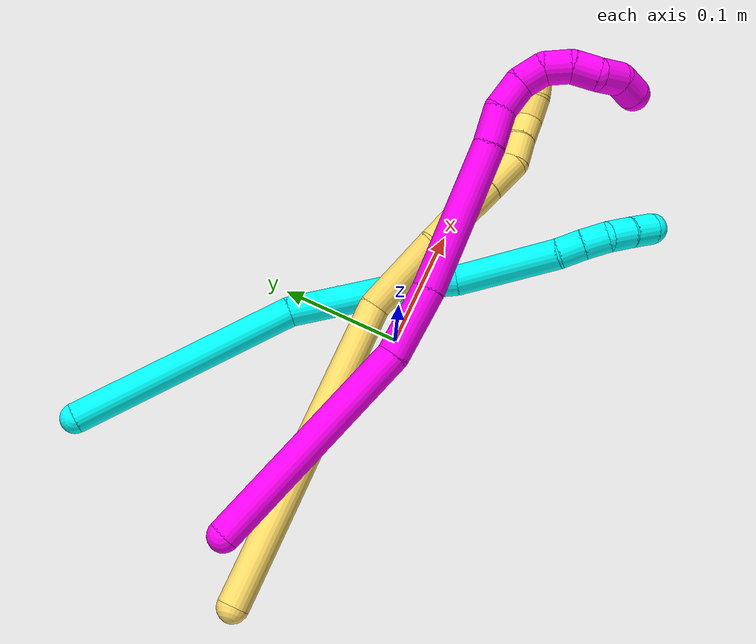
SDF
<sdf version="1.7">
 <world name="default">
  <model name="3">
   <static>0</static>
   <link name="3">
    <collision name="collision-cylinder-e_1_1_4">
     <pose>0.069147 -0.066506 0.002081 1.53951 0.804624 0.782323</pose>
     <geometry><cylinder><radius>0.0125</radius><length>0.191923</length></cylinder></geometry>
     <surface>
      <friction><ode><mu>1.16</mu><mu2>1.16</mu2><slip1>0</slip1><slip2>0</slip2></ode></friction>
      <contact><ode><kp>1e+06</kp><kd>1</kd><max_vel>0</max_vel><min_depth>0.001</min_depth></ode></contact>
     </surface>
    </collision>
    <visual name="visual-cylinder-e_1_1_4">
     <pose>0.069147 -0.066506 0.002081 1.53951 0.804624 0.782323</pose>
     <geometry><cylinder><radius>0.0125</radius><length>0.191923</length></cylinder></geometry>
     <material><ambient>0.003922 1 0.996078 1</ambient></material>
    </visual>
    <collision name="collision-cylinder-e_2_4_5">
     <pose>0.167105 -0.1803 0.016339 1.31878 0.533033 0.417084</pose>
     <geometry><cylinder><radius>0.0125</radius><length>0.113394</length></cylinder></geometry>
     <surface>
      <friction><ode><mu>1.16</mu><mu2>1.16</mu2><slip1>0</slip1><slip2>0</slip2></ode></friction>
      <contact><ode><kp>1e+06</kp><kd>1</kd><max_vel>0</max_vel><min_depth>0.001</min_depth></ode></contact>
     </surface>
    </collision>
    <visual name="visual-cylinder-e_2_4_5">
     <pose>0.167105 -0.1803 0.016339 1.31878 0.533033 0.417084</pose>
     <geometry><cylinder><radius>0.0125</radius><length>0.113394</length></cylinder></geometry>
     <material><ambient>0.003922 1 0.996078 1</ambient></material>
    </visual>
    <collision name="collision-cylinder-e_3_5_6">
     <pose>0.201566 -0.240008 0.029186 1.51688 0.426453 0.404681</pose>
     <geometry><cylinder><radius>0.0125</radius><length>0.027321</length></cylinder></geometry>
     <surface>
      <friction><ode><mu>1.16</mu><mu2>1.16</mu2><slip1>0</slip1><slip2>0</slip2></ode></friction>
      <contact><ode><kp>1e+06</kp><kd>1</kd><max_vel>0</max_vel><min_depth>0.001</min_depth></ode></contact>
     </surface>
    </collision>
    <visual name="visual-cylinder-e_3_5_6">
     <pose>0.201566 -0.240008 0.029186 1.51688 0.426453 0.404681</pose>
     <geometry><cylinder><radius>0.0125</radius><length>0.027321</length></cylinder></geometry>
     <material><ambient>0.003922 1 0.996078 1</ambient></material>
    </visual>
    <collision name="collision-cylinder-e_4_6_7">
     <pose>0.228046 -0.28359 0.051774 0.957841 0.500322 0.263805</pose>
     <geometry><cylinder><radius>0.0125</radius><length>0.086844</length></cylinder></geometry>
     <surface>
      <friction><ode><mu>1.16</mu><mu2>1.16</mu2><slip1>0</slip1><slip2>0</slip2></ode></friction>
      <contact><ode><kp>1e+06</kp><kd>1</kd><max_vel>0</max_vel><min_depth>0.001</min_depth></ode></contact>
     </surface>
    </collision>
    <visual name="visual-cylinder-e_4_6_7">
     <pose>0.228046 -0.28359 0.051774 0.957841 0.500322 0.263805</pose>
     <geometry><cylinder><radius>0.0125</radius><length>0.086844</length></cylinder></geometry>
     <material><ambient>0.003922 1 0.996078 1</ambient></material>
    </visual>
    <collision name="collision-cylinder-e_5_7_8">
     <pose>0.254917 -0.321879 0.077343 1.09728 0.646428 0.403895</pose>
     <geometry><cylinder><radius>0.0125</radius><length>0.020057</length></cylinder></geometry>
     <surface>
      <friction><ode><mu>1.16</mu><mu2>1.16</mu2><slip1>0</slip1><slip2>0</slip2></ode></friction>
      <contact><ode><kp>1e+06</kp><kd>1</kd><max_vel>0</max_vel><min_depth>0.001</min_depth></ode></contact>
     </surface>
    </collision>
    <visual name="visual-cylinder-e_5_7_8">
     <pose>0.254917 -0.321879 0.077343 1.09728 0.646428 0.403895</pose>
     <geometry><cylinder><radius>0.0125</radius><length>0.020057</length></cylinder></geometry>
     <material><ambient>0.003922 1 0.996078 1</ambient></material>
    </visual>
    <collision name="collision-cylinder-e_6_8_9">
     <pose>0.266626 -0.336652 0.08447 1.14423 0.593485 0.388829</pose>
     <geometry><cylinder><radius>0.0125</radius><length>0.020272</length></cylinder></geometry>
     <surface>
      <friction><ode><mu>1.16</mu><mu2>1.16</mu2><slip1>0</slip1><slip2>0</slip2></ode></friction>
      <contact><ode><kp>1e+06</kp><kd>1</kd><max_vel>0</max_vel><min_depth>0.001</min_depth></ode></contact>
     </surface>
    </collision>
    <visual name="visual-cylinder-e_6_8_9">
     <pose>0.266626 -0.336652 0.08447 1.14423 0.593485 0.388829</pose>
     <geometry><cylinder><radius>0.0125</radius><length>0.020272</length></cylinder></geometry>
     <material><ambient>0.003922 1 0.996078 1</ambient></material>
    </visual>
    <collision name="collision-cylinder-e_7_9_10">
     <pose>0.277519 -0.352863 0.087171 1.66113 0.546154 0.594982</pose>
     <geometry><cylinder><radius>0.0125</radius><length>0.020119</length></cylinder></geometry>
     <surface>
      <friction><ode><mu>1.16</mu><mu2>1.16</mu2><slip1>0</slip1><slip2>0</slip2></ode></friction>
      <contact><ode><kp>1e+06</kp><kd>1</kd><max_vel>0</max_vel><min_depth>0.001</min_depth></ode></contact>
     </surface>
    </collision>
    <visual name="visual-cylinder-e_7_9_10">
     <pose>0.277519 -0.352863 0.087171 1.66113 0.546154 0.594982</pose>
     <geometry><cylinder><radius>0.0125</radius><length>0.020119</length></cylinder></geometry>
     <material><ambient>0.003922 1 0.996078 1</ambient></material>
    </visual>
    <collision name="collision-cylinder-e_8_10_2">
     <pose>0.287693 -0.369965 0.084589 1.77932 0.515692 0.629114</pose>
     <geometry><cylinder><radius>0.0125</radius><length>0.02007</length></cylinder></geometry>
     <surface>
      <friction><ode><mu>1.16</mu><mu2>1.16</mu2><slip1>0</slip1><slip2>0</slip2></ode></friction>
      <contact><ode><kp>1e+06</kp><kd>1</kd><max_vel>0</max_vel><min_depth>0.001</min_depth></ode></contact>
     </surface>
    </collision>
    <visual name="visual-cylinder-e_8_10_2">
     <pose>0.287693 -0.369965 0.084589 1.77932 0.515692 0.629114</pose>
     <geometry><cylinder><radius>0.0125</radius><length>0.02007</length></cylinder></geometry>
     <material><ambient>0.003922 1 0.996078 1</ambient></material>
    </visual>
    <collision name="collision-sphere-2">
     <pose>0.292641 -0.378506 0.082781 0 -0 0</pose>
     <geometry><sphere><radius>0.0125</radius></sphere></geometry>
     <surface>
      <friction><ode><mu>1.16</mu><mu2>1.16</mu2><slip1>0</slip1><slip2>0</slip2></ode></friction>
      <contact><ode><kp>1e+06</kp><kd>1</kd><max_vel>0</max_vel><min_depth>0.001</min_depth></ode></contact>
     </surface>
    </collision>
    <visual name="visual-sphere-2">
     <pose>0.292641 -0.378506 0.082781 0 -0 0</pose>
     <geometry><sphere><radius>0.0125</radius></sphere></geometry>
     <material><ambient>0.003922 1 0.996078 1</ambient></material>
    </visual>
    <collision name="collision-sphere-10">
     <pose>0.282744 -0.361424 0.086396 0 -0 0</pose>
     <geometry><sphere><radius>0.0125</radius></sphere></geometry>
     <surface>
      <friction><ode><mu>1.16</mu><mu2>1.16</mu2><slip1>0</slip1><slip2>0</slip2></ode></friction>
      <contact><ode><kp>1e+06</kp><kd>1</kd><max_vel>0</max_vel><min_depth>0.001</min_depth></ode></contact>
     </surface>
    </collision>
    <visual name="visual-sphere-10">
     <pose>0.282744 -0.361424 0.086396 0 -0 0</pose>
     <geometry><sphere><radius>0.0125</radius></sphere></geometry>
     <material><ambient>0.003922 1 0.996078 1</ambient></material>
    </visual>
    <collision name="collision-sphere-9">
     <pose>0.272294 -0.344302 0.087947 0 -0 0</pose>
     <geometry><sphere><radius>0.0125</radius></sphere></geometry>
     <surface>
      <friction><ode><mu>1.16</mu><mu2>1.16</mu2><slip1>0</slip1><slip2>0</slip2></ode></friction>
      <contact><ode><kp>1e+06</kp><kd>1</kd><max_vel>0</max_vel><min_depth>0.001</min_depth></ode></contact>
     </surface>
    </collision>
    <visual name="visual-sphere-9">
     <pose>0.272294 -0.344302 0.087947 0 -0 0</pose>
     <geometry><sphere><radius>0.0125</radius></sphere></geometry>
     <material><ambient>0.003922 1 0.996078 1</ambient></material>
    </visual>
    <collision name="collision-sphere-4">
     <pose>0.138294 -0.133011 0.004162 0 -0 0</pose>
     <geometry><sphere><radius>0.0125</radius></sphere></geometry>
     <surface>
      <friction><ode><mu>1.16</mu><mu2>1.16</mu2><slip1>0</slip1><slip2>0</slip2></ode></friction>
      <contact><ode><kp>1e+06</kp><kd>1</kd><max_vel>0</max_vel><min_depth>0.001</min_depth></ode></contact>
     </surface>
    </collision>
    <visual name="visual-sphere-4">
     <pose>0.138294 -0.133011 0.004162 0 -0 0</pose>
     <geometry><sphere><radius>0.0125</radius></sphere></geometry>
     <material><ambient>0.003922 1 0.996078 1</ambient></material>
    </visual>
    <collision name="collision-sphere-1">
     <geometry><sphere><radius>0.0125</radius></sphere></geometry>
     <surface>
      <friction><ode><mu>1.16</mu><mu2>1.16</mu2><slip1>0</slip1><slip2>0</slip2></ode></friction>
      <contact><ode><kp>1e+06</kp><kd>1</kd><max_vel>0</max_vel><min_depth>0.001</min_depth></ode></contact>
     </surface>
    </collision>
    <visual name="visual-sphere-1">
     <geometry><sphere><radius>0.0125</radius></sphere></geometry>
     <material><ambient>0.003922 1 0.996078 1</ambient></material>
    </visual>
    <collision name="collision-sphere-8">
     <pose>0.260957 -0.329003 0.080994 0 -0 0</pose>
     <geometry><sphere><radius>0.0125</radius></sphere></geometry>
     <surface>
      <friction><ode><mu>1.16</mu><mu2>1.16</mu2><slip1>0</slip1><slip2>0</slip2></ode></friction>
      <contact><ode><kp>1e+06</kp><kd>1</kd><max_vel>0</max_vel><min_depth>0.001</min_depth></ode></contact>
     </surface>
    </collision>
    <visual name="visual-sphere-8">
     <pose>0.260957 -0.329003 0.080994 0 -0 0</pose>
     <geometry><sphere><radius>0.0125</radius></sphere></geometry>
     <material><ambient>0.003922 1 0.996078 1</ambient></material>
    </visual>
    <collision name="collision-sphere-5">
     <pose>0.195915 -0.227589 0.028516 0 -0 0</pose>
     <geometry><sphere><radius>0.0125</radius></sphere></geometry>
     <surface>
      <friction><ode><mu>1.16</mu><mu2>1.16</mu2><slip1>0</slip1><slip2>0</slip2></ode></friction>
      <contact><ode><kp>1e+06</kp><kd>1</kd><max_vel>0</max_vel><min_depth>0.001</min_depth></ode></contact>
     </surface>
    </collision>
    <visual name="visual-sphere-5">
     <pose>0.195915 -0.227589 0.028516 0 -0 0</pose>
     <geometry><sphere><radius>0.0125</radius></sphere></geometry>
     <material><ambient>0.003922 1 0.996078 1</ambient></material>
    </visual>
    <collision name="collision-sphere-6">
     <pose>0.207216 -0.252427 0.029856 0 -0 0</pose>
     <geometry><sphere><radius>0.0125</radius></sphere></geometry>
     <surface>
      <friction><ode><mu>1.16</mu><mu2>1.16</mu2><slip1>0</slip1><slip2>0</slip2></ode></friction>
      <contact><ode><kp>1e+06</kp><kd>1</kd><max_vel>0</max_vel><min_depth>0.001</min_depth></ode></contact>
     </surface>
    </collision>
    <visual name="visual-sphere-6">
     <pose>0.207216 -0.252427 0.029856 0 -0 0</pose>
     <geometry><sphere><radius>0.0125</radius></sphere></geometry>
     <material><ambient>0.003922 1 0.996078 1</ambient></material>
    </visual>
    <collision name="collision-sphere-7">
     <pose>0.248876 -0.314754 0.073693 0 -0 0</pose>
     <geometry><sphere><radius>0.0125</radius></sphere></geometry>
     <surface>
      <friction><ode><mu>1.16</mu><mu2>1.16</mu2><slip1>0</slip1><slip2>0</slip2></ode></friction>
      <contact><ode><kp>1e+06</kp><kd>1</kd><max_vel>0</max_vel><min_depth>0.001</min_depth></ode></contact>
     </surface>
    </collision>
    <visual name="visual-sphere-7">
     <pose>0.248876 -0.314754 0.073693 0 -0 0</pose>
     <geometry><sphere><radius>0.0125</radius></sphere></geometry>
     <material><ambient>0.003922 1 0.996078 1</ambient></material>
    </visual>
    <inertial>
     <pose>0.158813 -0.184398 0.028522 0 -0 0</pose>
     <mass>0.5</mass>
     <inertia>
      <ixx>0.000823</ixx>
      <ixy>0</ixy>
      <ixz>0</ixz>
      <iyy>0.000734</iyy>
      <iyz>0</iyz>
      <izz>4.8e-05</izz>
     </inertia>
    </inertial>
   </link>
   <pose>-0.170993 0.203096 0.016597 0.240691 -0.161371 0.103576</pose>
  </model>
  <model name="5">
   <static>0</static>
   <link name="5">
    <collision name="collision-cylinder-e_1_1_4">
     <pose>0.03232 0.002851 -0.12284 -3.11839 0.257205 -2.96262</pose>
     <geometry><cylinder><radius>0.0125</radius><length>0.254106</length></cylinder></geometry>
     <surface>
      <friction><ode><mu>1.16</mu><mu2>1.16</mu2><slip1>0</slip1><slip2>0</slip2></ode></friction>
      <contact><ode><kp>1e+06</kp><kd>1</kd><max_vel>0</max_vel><min_depth>0.001</min_depth></ode></contact>
     </surface>
    </collision>
    <visual name="visual-cylinder-e_1_1_4">
     <pose>0.03232 0.002851 -0.12284 -3.11839 0.257205 -2.96262</pose>
     <geometry><cylinder><radius>0.0125</radius><length>0.254106</length></cylinder></geometry>
     <material><ambient>1 0.858824 0.4 1</ambient></material>
    </visual>
    <collision name="collision-cylinder-e_2_4_5">
     <pose>0.087683 0.003321 -0.271189 3.04853 0.732526 2.89996</pose>
     <geometry><cylinder><radius>0.0125</radius><length>0.068916</length></cylinder></geometry>
     <surface>
      <friction><ode><mu>1.16</mu><mu2>1.16</mu2><slip1>0</slip1><slip2>0</slip2></ode></friction>
      <contact><ode><kp>1e+06</kp><kd>1</kd><max_vel>0</max_vel><min_depth>0.001</min_depth></ode></contact>
     </surface>
    </collision>
    <visual name="visual-cylinder-e_2_4_5">
     <pose>0.087683 0.003321 -0.271189 3.04853 0.732526 2.89996</pose>
     <geometry><cylinder><radius>0.0125</radius><length>0.068916</length></cylinder></geometry>
     <material><ambient>1 0.858824 0.4 1</ambient></material>
    </visual>
    <collision name="collision-cylinder-e_3_5_6">
     <pose>0.118538 -0.002311 -0.310408 2.90874 0.506211 2.29228</pose>
     <geometry><cylinder><radius>0.0125</radius><length>0.032223</length></cylinder></geometry>
     <surface>
      <friction><ode><mu>1.16</mu><mu2>1.16</mu2><slip1>0</slip1><slip2>0</slip2></ode></friction>
      <contact><ode><kp>1e+06</kp><kd>1</kd><max_vel>0</max_vel><min_depth>0.001</min_depth></ode></contact>
     </surface>
    </collision>
    <visual name="visual-cylinder-e_3_5_6">
     <pose>0.118538 -0.002311 -0.310408 2.90874 0.506211 2.29228</pose>
     <geometry><cylinder><radius>0.0125</radius><length>0.032223</length></cylinder></geometry>
     <material><ambient>1 0.858824 0.4 1</ambient></material>
    </visual>
    <collision name="collision-cylinder-e_4_6_7">
     <pose>0.133158 -0.009782 -0.33798 2.84615 0.439254 1.96567</pose>
     <geometry><cylinder><radius>0.0125</radius><length>0.032019</length></cylinder></geometry>
     <surface>
      <friction><ode><mu>1.16</mu><mu2>1.16</mu2><slip1>0</slip1><slip2>0</slip2></ode></friction>
      <contact><ode><kp>1e+06</kp><kd>1</kd><max_vel>0</max_vel><min_depth>0.001</min_depth></ode></contact>
     </surface>
    </collision>
    <visual name="visual-cylinder-e_4_6_7">
     <pose>0.133158 -0.009782 -0.33798 2.84615 0.439254 1.96567</pose>
     <geometry><cylinder><radius>0.0125</radius><length>0.032019</length></cylinder></geometry>
     <material><ambient>1 0.858824 0.4 1</ambient></material>
    </visual>
    <collision name="collision-cylinder-e_5_7_8">
     <pose>0.146049 -0.017962 -0.365306 2.85542 0.408969 1.92726</pose>
     <geometry><cylinder><radius>0.0125</radius><length>0.030591</length></cylinder></geometry>
     <surface>
      <friction><ode><mu>1.16</mu><mu2>1.16</mu2><slip1>0</slip1><slip2>0</slip2></ode></friction>
      <contact><ode><kp>1e+06</kp><kd>1</kd><max_vel>0</max_vel><min_depth>0.001</min_depth></ode></contact>
     </surface>
    </collision>
    <visual name="visual-cylinder-e_5_7_8">
     <pose>0.146049 -0.017962 -0.365306 2.85542 0.408969 1.92726</pose>
     <geometry><cylinder><radius>0.0125</radius><length>0.030591</length></cylinder></geometry>
     <material><ambient>1 0.858824 0.4 1</ambient></material>
    </visual>
    <collision name="collision-cylinder-e_6_8_9">
     <pose>0.153724 -0.020796 -0.389633 -3.03813 0.144714 -1.90106</pose>
     <geometry><cylinder><radius>0.0125</radius><length>0.022075</length></cylinder></geometry>
     <surface>
      <friction><ode><mu>1.16</mu><mu2>1.16</mu2><slip1>0</slip1><slip2>0</slip2></ode></friction>
      <contact><ode><kp>1e+06</kp><kd>1</kd><max_vel>0</max_vel><min_depth>0.001</min_depth></ode></contact>
     </surface>
    </collision>
    <visual name="visual-cylinder-e_6_8_9">
     <pose>0.153724 -0.020796 -0.389633 -3.03813 0.144714 -1.90106</pose>
     <geometry><cylinder><radius>0.0125</radius><length>0.022075</length></cylinder></geometry>
     <material><ambient>1 0.858824 0.4 1</ambient></material>
    </visual>
    <collision name="collision-cylinder-e_7_9_10">
     <pose>0.156374 -0.019732 -0.410449 3.13513 0.106011 3.01986</pose>
     <geometry><cylinder><radius>0.0125</radius><length>0.020018</length></cylinder></geometry>
     <surface>
      <friction><ode><mu>1.16</mu><mu2>1.16</mu2><slip1>0</slip1><slip2>0</slip2></ode></friction>
      <contact><ode><kp>1e+06</kp><kd>1</kd><max_vel>0</max_vel><min_depth>0.001</min_depth></ode></contact>
     </surface>
    </collision>
    <visual name="visual-cylinder-e_7_9_10">
     <pose>0.156374 -0.019732 -0.410449 3.13513 0.106011 3.01986</pose>
     <geometry><cylinder><radius>0.0125</radius><length>0.020018</length></cylinder></geometry>
     <material><ambient>1 0.858824 0.4 1</ambient></material>
    </visual>
    <collision name="collision-cylinder-e_8_10_11">
     <pose>0.161368 -0.01739 -0.429295 -2.87734 0.40359 -1.98938</pose>
     <geometry><cylinder><radius>0.0125</radius><length>0.020036</length></cylinder></geometry>
     <surface>
      <friction><ode><mu>1.16</mu><mu2>1.16</mu2><slip1>0</slip1><slip2>0</slip2></ode></friction>
      <contact><ode><kp>1e+06</kp><kd>1</kd><max_vel>0</max_vel><min_depth>0.001</min_depth></ode></contact>
     </surface>
    </collision>
    <visual name="visual-cylinder-e_8_10_11">
     <pose>0.161368 -0.01739 -0.429295 -2.87734 0.40359 -1.98938</pose>
     <geometry><cylinder><radius>0.0125</radius><length>0.020036</length></cylinder></geometry>
     <material><ambient>1 0.858824 0.4 1</ambient></material>
    </visual>
    <collision name="collision-cylinder-e_9_11_2">
     <pose>0.167205 -0.011797 -0.447483 -2.81129 0.191337 -1.04482</pose>
     <geometry><cylinder><radius>0.0125</radius><length>0.020016</length></cylinder></geometry>
     <surface>
      <friction><ode><mu>1.16</mu><mu2>1.16</mu2><slip1>0</slip1><slip2>0</slip2></ode></friction>
      <contact><ode><kp>1e+06</kp><kd>1</kd><max_vel>0</max_vel><min_depth>0.001</min_depth></ode></contact>
     </surface>
    </collision>
    <visual name="visual-cylinder-e_9_11_2">
     <pose>0.167205 -0.011797 -0.447483 -2.81129 0.191337 -1.04482</pose>
     <geometry><cylinder><radius>0.0125</radius><length>0.020016</length></cylinder></geometry>
     <material><ambient>1 0.858824 0.4 1</ambient></material>
    </visual>
    <collision name="collision-sphere-2">
     <pose>0.169108 -0.008611 -0.456777 0 -0 0</pose>
     <geometry><sphere><radius>0.0125</radius></sphere></geometry>
     <surface>
      <friction><ode><mu>1.16</mu><mu2>1.16</mu2><slip1>0</slip1><slip2>0</slip2></ode></friction>
      <contact><ode><kp>1e+06</kp><kd>1</kd><max_vel>0</max_vel><min_depth>0.001</min_depth></ode></contact>
     </surface>
    </collision>
    <visual name="visual-sphere-2">
     <pose>0.169108 -0.008611 -0.456777 0 -0 0</pose>
     <geometry><sphere><radius>0.0125</radius></sphere></geometry>
     <material><ambient>1 0.858824 0.4 1</ambient></material>
    </visual>
    <collision name="collision-sphere-11">
     <pose>0.165302 -0.014984 -0.438188 0 -0 0</pose>
     <geometry><sphere><radius>0.0125</radius></sphere></geometry>
     <surface>
      <friction><ode><mu>1.16</mu><mu2>1.16</mu2><slip1>0</slip1><slip2>0</slip2></ode></friction>
      <contact><ode><kp>1e+06</kp><kd>1</kd><max_vel>0</max_vel><min_depth>0.001</min_depth></ode></contact>
     </surface>
    </collision>
    <visual name="visual-sphere-11">
     <pose>0.165302 -0.014984 -0.438188 0 -0 0</pose>
     <geometry><sphere><radius>0.0125</radius></sphere></geometry>
     <material><ambient>1 0.858824 0.4 1</ambient></material>
    </visual>
    <collision name="collision-sphere-10">
     <pose>0.157433 -0.019797 -0.420402 0 -0 0</pose>
     <geometry><sphere><radius>0.0125</radius></sphere></geometry>
     <surface>
      <friction><ode><mu>1.16</mu><mu2>1.16</mu2><slip1>0</slip1><slip2>0</slip2></ode></friction>
      <contact><ode><kp>1e+06</kp><kd>1</kd><max_vel>0</max_vel><min_depth>0.001</min_depth></ode></contact>
     </surface>
    </collision>
    <visual name="visual-sphere-10">
     <pose>0.157433 -0.019797 -0.420402 0 -0 0</pose>
     <geometry><sphere><radius>0.0125</radius></sphere></geometry>
     <material><ambient>1 0.858824 0.4 1</ambient></material>
    </visual>
    <collision name="collision-sphere-9">
     <pose>0.155315 -0.019668 -0.400497 0 -0 0</pose>
     <geometry><sphere><radius>0.0125</radius></sphere></geometry>
     <surface>
      <friction><ode><mu>1.16</mu><mu2>1.16</mu2><slip1>0</slip1><slip2>0</slip2></ode></friction>
      <contact><ode><kp>1e+06</kp><kd>1</kd><max_vel>0</max_vel><min_depth>0.001</min_depth></ode></contact>
     </surface>
    </collision>
    <visual name="visual-sphere-9">
     <pose>0.155315 -0.019668 -0.400497 0 -0 0</pose>
     <geometry><sphere><radius>0.0125</radius></sphere></geometry>
     <material><ambient>1 0.858824 0.4 1</ambient></material>
    </visual>
    <collision name="collision-sphere-4">
     <pose>0.064639 0.005702 -0.245681 0 -0 0</pose>
     <geometry><sphere><radius>0.0125</radius></sphere></geometry>
     <surface>
      <friction><ode><mu>1.16</mu><mu2>1.16</mu2><slip1>0</slip1><slip2>0</slip2></ode></friction>
      <contact><ode><kp>1e+06</kp><kd>1</kd><max_vel>0</max_vel><min_depth>0.001</min_depth></ode></contact>
     </surface>
    </collision>
    <visual name="visual-sphere-4">
     <pose>0.064639 0.005702 -0.245681 0 -0 0</pose>
     <geometry><sphere><radius>0.0125</radius></sphere></geometry>
     <material><ambient>1 0.858824 0.4 1</ambient></material>
    </visual>
    <collision name="collision-sphere-1">
     <geometry><sphere><radius>0.0125</radius></sphere></geometry>
     <surface>
      <friction><ode><mu>1.16</mu><mu2>1.16</mu2><slip1>0</slip1><slip2>0</slip2></ode></friction>
      <contact><ode><kp>1e+06</kp><kd>1</kd><max_vel>0</max_vel><min_depth>0.001</min_depth></ode></contact>
     </surface>
    </collision>
    <visual name="visual-sphere-1">
     <geometry><sphere><radius>0.0125</radius></sphere></geometry>
     <material><ambient>1 0.858824 0.4 1</ambient></material>
    </visual>
    <collision name="collision-sphere-8">
     <pose>0.152132 -0.021924 -0.378769 0 -0 0</pose>
     <geometry><sphere><radius>0.0125</radius></sphere></geometry>
     <surface>
      <friction><ode><mu>1.16</mu><mu2>1.16</mu2><slip1>0</slip1><slip2>0</slip2></ode></friction>
      <contact><ode><kp>1e+06</kp><kd>1</kd><max_vel>0</max_vel><min_depth>0.001</min_depth></ode></contact>
     </surface>
    </collision>
    <visual name="visual-sphere-8">
     <pose>0.152132 -0.021924 -0.378769 0 -0 0</pose>
     <geometry><sphere><radius>0.0125</radius></sphere></geometry>
     <material><ambient>1 0.858824 0.4 1</ambient></material>
    </visual>
    <collision name="collision-sphere-5">
     <pose>0.110726 0.00094 -0.296697 0 -0 0</pose>
     <geometry><sphere><radius>0.0125</radius></sphere></geometry>
     <surface>
      <friction><ode><mu>1.16</mu><mu2>1.16</mu2><slip1>0</slip1><slip2>0</slip2></ode></friction>
      <contact><ode><kp>1e+06</kp><kd>1</kd><max_vel>0</max_vel><min_depth>0.001</min_depth></ode></contact>
     </surface>
    </collision>
    <visual name="visual-sphere-5">
     <pose>0.110726 0.00094 -0.296697 0 -0 0</pose>
     <geometry><sphere><radius>0.0125</radius></sphere></geometry>
     <material><ambient>1 0.858824 0.4 1</ambient></material>
    </visual>
    <collision name="collision-sphere-6">
     <pose>0.12635 -0.005563 -0.324118 0 -0 0</pose>
     <geometry><sphere><radius>0.0125</radius></sphere></geometry>
     <surface>
      <friction><ode><mu>1.16</mu><mu2>1.16</mu2><slip1>0</slip1><slip2>0</slip2></ode></friction>
      <contact><ode><kp>1e+06</kp><kd>1</kd><max_vel>0</max_vel><min_depth>0.001</min_depth></ode></contact>
     </surface>
    </collision>
    <visual name="visual-sphere-6">
     <pose>0.12635 -0.005563 -0.324118 0 -0 0</pose>
     <geometry><sphere><radius>0.0125</radius></sphere></geometry>
     <material><ambient>1 0.858824 0.4 1</ambient></material>
    </visual>
    <collision name="collision-sphere-7">
     <pose>0.139967 -0.014001 -0.351843 0 -0 0</pose>
     <geometry><sphere><radius>0.0125</radius></sphere></geometry>
     <surface>
      <friction><ode><mu>1.16</mu><mu2>1.16</mu2><slip1>0</slip1><slip2>0</slip2></ode></friction>
      <contact><ode><kp>1e+06</kp><kd>1</kd><max_vel>0</max_vel><min_depth>0.001</min_depth></ode></contact>
     </surface>
    </collision>
    <visual name="visual-sphere-7">
     <pose>0.139967 -0.014001 -0.351843 0 -0 0</pose>
     <geometry><sphere><radius>0.0125</radius></sphere></geometry>
     <material><ambient>1 0.858824 0.4 1</ambient></material>
    </visual>
    <inertial>
     <pose>0.07982 -0.002845 -0.232557 0 -0 0</pose>
     <mass>0.5</mass>
     <inertia>
      <ixx>-0.001552</ixx>
      <ixy>0</ixy>
      <ixz>0</ixz>
      <iyy>0.001167</iyy>
      <iyz>0</iyz>
      <izz>-0.000439</izz>
     </inertia>
    </inertial>
   </link>
   <pose>-0.247011 0.019378 0.046149 1.20519 -0.885546 -1.13158</pose>
  </model>
  <model name="10">
   <static>0</static>
   <link name="10">
    <collision name="collision-cylinder-e_1_1_4">
     <pose>0.081549 -0.033597 -0.001081 1.60296 1.17982 1.20974</pose>
     <geometry><cylinder><radius>0.0125</radius><length>0.176411</length></cylinder></geometry>
     <surface>
      <friction><ode><mu>1.16</mu><mu2>1.16</mu2><slip1>0</slip1><slip2>0</slip2></ode></friction>
      <contact><ode><kp>1e+06</kp><kd>1</kd><max_vel>0</max_vel><min_depth>0.001</min_depth></ode></contact>
     </surface>
    </collision>
    <visual name="visual-cylinder-e_1_1_4">
     <pose>0.081549 -0.033597 -0.001081 1.60296 1.17982 1.20974</pose>
     <geometry><cylinder><radius>0.0125</radius><length>0.176411</length></cylinder></geometry>
     <material><ambient>1 0 0.964706 1</ambient></material>
    </visual>
    <collision name="collision-cylinder-e_2_4_5">
     <pose>0.185119 -0.082988 -0.005917 1.80419 0.93554 1.13768</pose>
     <geometry><cylinder><radius>0.0125</radius><length>0.054715</length></cylinder></geometry>
     <surface>
      <friction><ode><mu>1.16</mu><mu2>1.16</mu2><slip1>0</slip1><slip2>0</slip2></ode></friction>
      <contact><ode><kp>1e+06</kp><kd>1</kd><max_vel>0</max_vel><min_depth>0.001</min_depth></ode></contact>
     </surface>
    </collision>
    <visual name="visual-cylinder-e_2_4_5">
     <pose>0.185119 -0.082988 -0.005917 1.80419 0.93554 1.13768</pose>
     <geometry><cylinder><radius>0.0125</radius><length>0.054715</length></cylinder></geometry>
     <material><ambient>1 0 0.964706 1</ambient></material>
    </visual>
    <collision name="collision-cylinder-e_3_5_6">
     <pose>0.25007 -0.136025 -0.020424 1.85187 0.836342 1.0673</pose>
     <geometry><cylinder><radius>0.0125</radius><length>0.115685</length></cylinder></geometry>
     <surface>
      <friction><ode><mu>1.16</mu><mu2>1.16</mu2><slip1>0</slip1><slip2>0</slip2></ode></friction>
      <contact><ode><kp>1e+06</kp><kd>1</kd><max_vel>0</max_vel><min_depth>0.001</min_depth></ode></contact>
     </surface>
    </collision>
    <visual name="visual-cylinder-e_3_5_6">
     <pose>0.25007 -0.136025 -0.020424 1.85187 0.836342 1.0673</pose>
     <geometry><cylinder><radius>0.0125</radius><length>0.115685</length></cylinder></geometry>
     <material><ambient>1 0 0.964706 1</ambient></material>
    </visual>
    <collision name="collision-cylinder-e_4_6_7">
     <pose>0.30256 -0.183445 -0.033672 1.81121 0.739603 0.917905</pose>
     <geometry><cylinder><radius>0.0125</radius><length>0.028366</length></cylinder></geometry>
     <surface>
      <friction><ode><mu>1.16</mu><mu2>1.16</mu2><slip1>0</slip1><slip2>0</slip2></ode></friction>
      <contact><ode><kp>1e+06</kp><kd>1</kd><max_vel>0</max_vel><min_depth>0.001</min_depth></ode></contact>
     </surface>
    </collision>
    <visual name="visual-cylinder-e_4_6_7">
     <pose>0.30256 -0.183445 -0.033672 1.81121 0.739603 0.917905</pose>
     <geometry><cylinder><radius>0.0125</radius><length>0.028366</length></cylinder></geometry>
     <material><ambient>1 0 0.964706 1</ambient></material>
    </visual>
    <collision name="collision-cylinder-e_5_7_8">
     <pose>0.323073 -0.199015 -0.038094 1.91393 1.08897 1.41982</pose>
     <geometry><cylinder><radius>0.0125</radius><length>0.024723</length></cylinder></geometry>
     <surface>
      <friction><ode><mu>1.16</mu><mu2>1.16</mu2><slip1>0</slip1><slip2>0</slip2></ode></friction>
      <contact><ode><kp>1e+06</kp><kd>1</kd><max_vel>0</max_vel><min_depth>0.001</min_depth></ode></contact>
     </surface>
    </collision>
    <visual name="visual-cylinder-e_5_7_8">
     <pose>0.323073 -0.199015 -0.038094 1.91393 1.08897 1.41982</pose>
     <geometry><cylinder><radius>0.0125</radius><length>0.024723</length></cylinder></geometry>
     <material><ambient>1 0 0.964706 1</ambient></material>
    </visual>
    <collision name="collision-cylinder-e_6_8_9">
     <pose>0.343738 -0.204478 -0.042487 3.11387 1.32203 3.10595</pose>
     <geometry><cylinder><radius>0.0125</radius><length>0.020039</length></cylinder></geometry>
     <surface>
      <friction><ode><mu>1.16</mu><mu2>1.16</mu2><slip1>0</slip1><slip2>0</slip2></ode></friction>
      <contact><ode><kp>1e+06</kp><kd>1</kd><max_vel>0</max_vel><min_depth>0.001</min_depth></ode></contact>
     </surface>
    </collision>
    <visual name="visual-cylinder-e_6_8_9">
     <pose>0.343738 -0.204478 -0.042487 3.11387 1.32203 3.10595</pose>
     <geometry><cylinder><radius>0.0125</radius><length>0.020039</length></cylinder></geometry>
     <material><ambient>1 0 0.964706 1</ambient></material>
    </visual>
    <collision name="collision-cylinder-e_7_9_10">
     <pose>0.362543 -0.200356 -0.045258 -1.64344 1.13802 -1.20499</pose>
     <geometry><cylinder><radius>0.0125</radius><length>0.020034</length></cylinder></geometry>
     <surface>
      <friction><ode><mu>1.16</mu><mu2>1.16</mu2><slip1>0</slip1><slip2>0</slip2></ode></friction>
      <contact><ode><kp>1e+06</kp><kd>1</kd><max_vel>0</max_vel><min_depth>0.001</min_depth></ode></contact>
     </surface>
    </collision>
    <visual name="visual-cylinder-e_7_9_10">
     <pose>0.362543 -0.200356 -0.045258 -1.64344 1.13802 -1.20499</pose>
     <geometry><cylinder><radius>0.0125</radius><length>0.020034</length></cylinder></geometry>
     <material><ambient>1 0 0.964706 1</ambient></material>
    </visual>
    <collision name="collision-cylinder-e_8_10_11">
     <pose>0.379057 -0.189824 -0.043347 -1.23466 0.835022 -0.610136</pose>
     <geometry><cylinder><radius>0.0125</radius><length>0.020021</length></cylinder></geometry>
     <surface>
      <friction><ode><mu>1.16</mu><mu2>1.16</mu2><slip1>0</slip1><slip2>0</slip2></ode></friction>
      <contact><ode><kp>1e+06</kp><kd>1</kd><max_vel>0</max_vel><min_depth>0.001</min_depth></ode></contact>
     </surface>
    </collision>
    <visual name="visual-cylinder-e_8_10_11">
     <pose>0.379057 -0.189824 -0.043347 -1.23466 0.835022 -0.610136</pose>
     <geometry><cylinder><radius>0.0125</radius><length>0.020021</length></cylinder></geometry>
     <material><ambient>1 0 0.964706 1</ambient></material>
    </visual>
    <collision name="collision-cylinder-e_9_11_12">
     <pose>0.394264 -0.180849 -0.03543 -0.432593 0.892113 -0.209386</pose>
     <geometry><cylinder><radius>0.0125</radius><length>0.020005</length></cylinder></geometry>
     <surface>
      <friction><ode><mu>1.16</mu><mu2>1.16</mu2><slip1>0</slip1><slip2>0</slip2></ode></friction>
      <contact><ode><kp>1e+06</kp><kd>1</kd><max_vel>0</max_vel><min_depth>0.001</min_depth></ode></contact>
     </surface>
    </collision>
    <visual name="visual-cylinder-e_9_11_12">
     <pose>0.394264 -0.180849 -0.03543 -0.432593 0.892113 -0.209386</pose>
     <geometry><cylinder><radius>0.0125</radius><length>0.020005</length></cylinder></geometry>
     <material><ambient>1 0 0.964706 1</ambient></material>
    </visual>
    <collision name="collision-cylinder-e_10_12_2">
     <pose>0.406303 -0.173823 -0.021815 -0.506757 0.439278 -0.115485</pose>
     <geometry><cylinder><radius>0.0125</radius><length>0.020002</length></cylinder></geometry>
     <surface>
      <friction><ode><mu>1.16</mu><mu2>1.16</mu2><slip1>0</slip1><slip2>0</slip2></ode></friction>
      <contact><ode><kp>1e+06</kp><kd>1</kd><max_vel>0</max_vel><min_depth>0.001</min_depth></ode></contact>
     </surface>
    </collision>
    <visual name="visual-cylinder-e_10_12_2">
     <pose>0.406303 -0.173823 -0.021815 -0.506757 0.439278 -0.115485</pose>
     <geometry><cylinder><radius>0.0125</radius><length>0.020002</length></cylinder></geometry>
     <material><ambient>1 0 0.964706 1</ambient></material>
    </visual>
    <collision name="collision-sphere-2">
     <pose>0.410556 -0.16943 -0.013902 0 -0 0</pose>
     <geometry><sphere><radius>0.0125</radius></sphere></geometry>
     <surface>
      <friction><ode><mu>1.16</mu><mu2>1.16</mu2><slip1>0</slip1><slip2>0</slip2></ode></friction>
      <contact><ode><kp>1e+06</kp><kd>1</kd><max_vel>0</max_vel><min_depth>0.001</min_depth></ode></contact>
     </surface>
    </collision>
    <visual name="visual-sphere-2">
     <pose>0.410556 -0.16943 -0.013902 0 -0 0</pose>
     <geometry><sphere><radius>0.0125</radius></sphere></geometry>
     <material><ambient>1 0 0.964706 1</ambient></material>
    </visual>
    <collision name="collision-sphere-12">
     <pose>0.40205 -0.178216 -0.029729 0 -0 0</pose>
     <geometry><sphere><radius>0.0125</radius></sphere></geometry>
     <surface>
      <friction><ode><mu>1.16</mu><mu2>1.16</mu2><slip1>0</slip1><slip2>0</slip2></ode></friction>
      <contact><ode><kp>1e+06</kp><kd>1</kd><max_vel>0</max_vel><min_depth>0.001</min_depth></ode></contact>
     </surface>
    </collision>
    <visual name="visual-sphere-12">
     <pose>0.40205 -0.178216 -0.029729 0 -0 0</pose>
     <geometry><sphere><radius>0.0125</radius></sphere></geometry>
     <material><ambient>1 0 0.964706 1</ambient></material>
    </visual>
    <collision name="collision-sphere-11">
     <pose>0.386478 -0.183481 -0.041131 0 -0 0</pose>
     <geometry><sphere><radius>0.0125</radius></sphere></geometry>
     <surface>
      <friction><ode><mu>1.16</mu><mu2>1.16</mu2><slip1>0</slip1><slip2>0</slip2></ode></friction>
      <contact><ode><kp>1e+06</kp><kd>1</kd><max_vel>0</max_vel><min_depth>0.001</min_depth></ode></contact>
     </surface>
    </collision>
    <visual name="visual-sphere-11">
     <pose>0.386478 -0.183481 -0.041131 0 -0 0</pose>
     <geometry><sphere><radius>0.0125</radius></sphere></geometry>
     <material><ambient>1 0 0.964706 1</ambient></material>
    </visual>
    <collision name="collision-sphere-10">
     <pose>0.371636 -0.196166 -0.045563 0 -0 0</pose>
     <geometry><sphere><radius>0.0125</radius></sphere></geometry>
     <surface>
      <friction><ode><mu>1.16</mu><mu2>1.16</mu2><slip1>0</slip1><slip2>0</slip2></ode></friction>
      <contact><ode><kp>1e+06</kp><kd>1</kd><max_vel>0</max_vel><min_depth>0.001</min_depth></ode></contact>
     </surface>
    </collision>
    <visual name="visual-sphere-10">
     <pose>0.371636 -0.196166 -0.045563 0 -0 0</pose>
     <geometry><sphere><radius>0.0125</radius></sphere></geometry>
     <material><ambient>1 0 0.964706 1</ambient></material>
    </visual>
    <collision name="collision-sphere-9">
     <pose>0.353449 -0.204546 -0.044953 0 -0 0</pose>
     <geometry><sphere><radius>0.0125</radius></sphere></geometry>
     <surface>
      <friction><ode><mu>1.16</mu><mu2>1.16</mu2><slip1>0</slip1><slip2>0</slip2></ode></friction>
      <contact><ode><kp>1e+06</kp><kd>1</kd><max_vel>0</max_vel><min_depth>0.001</min_depth></ode></contact>
     </surface>
    </collision>
    <visual name="visual-sphere-9">
     <pose>0.353449 -0.204546 -0.044953 0 -0 0</pose>
     <geometry><sphere><radius>0.0125</radius></sphere></geometry>
     <material><ambient>1 0 0.964706 1</ambient></material>
    </visual>
    <collision name="collision-sphere-4">
     <pose>0.163098 -0.067194 -0.002162 0 -0 0</pose>
     <geometry><sphere><radius>0.0125</radius></sphere></geometry>
     <surface>
      <friction><ode><mu>1.16</mu><mu2>1.16</mu2><slip1>0</slip1><slip2>0</slip2></ode></friction>
      <contact><ode><kp>1e+06</kp><kd>1</kd><max_vel>0</max_vel><min_depth>0.001</min_depth></ode></contact>
     </surface>
    </collision>
    <visual name="visual-sphere-4">
     <pose>0.163098 -0.067194 -0.002162 0 -0 0</pose>
     <geometry><sphere><radius>0.0125</radius></sphere></geometry>
     <material><ambient>1 0 0.964706 1</ambient></material>
    </visual>
    <collision name="collision-sphere-1">
     <geometry><sphere><radius>0.0125</radius></sphere></geometry>
     <surface>
      <friction><ode><mu>1.16</mu><mu2>1.16</mu2><slip1>0</slip1><slip2>0</slip2></ode></friction>
      <contact><ode><kp>1e+06</kp><kd>1</kd><max_vel>0</max_vel><min_depth>0.001</min_depth></ode></contact>
     </surface>
    </collision>
    <visual name="visual-sphere-1">
     <geometry><sphere><radius>0.0125</radius></sphere></geometry>
     <material><ambient>1 0 0.964706 1</ambient></material>
    </visual>
    <collision name="collision-sphere-8">
     <pose>0.334027 -0.20441 -0.040021 0 -0 0</pose>
     <geometry><sphere><radius>0.0125</radius></sphere></geometry>
     <surface>
      <friction><ode><mu>1.16</mu><mu2>1.16</mu2><slip1>0</slip1><slip2>0</slip2></ode></friction>
      <contact><ode><kp>1e+06</kp><kd>1</kd><max_vel>0</max_vel><min_depth>0.001</min_depth></ode></contact>
     </surface>
    </collision>
    <visual name="visual-sphere-8">
     <pose>0.334027 -0.20441 -0.040021 0 -0 0</pose>
     <geometry><sphere><radius>0.0125</radius></sphere></geometry>
     <material><ambient>1 0 0.964706 1</ambient></material>
    </visual>
    <collision name="collision-sphere-5">
     <pose>0.20714 -0.098781 -0.009671 0 -0 0</pose>
     <geometry><sphere><radius>0.0125</radius></sphere></geometry>
     <surface>
      <friction><ode><mu>1.16</mu><mu2>1.16</mu2><slip1>0</slip1><slip2>0</slip2></ode></friction>
      <contact><ode><kp>1e+06</kp><kd>1</kd><max_vel>0</max_vel><min_depth>0.001</min_depth></ode></contact>
     </surface>
    </collision>
    <visual name="visual-sphere-5">
     <pose>0.20714 -0.098781 -0.009671 0 -0 0</pose>
     <geometry><sphere><radius>0.0125</radius></sphere></geometry>
     <material><ambient>1 0 0.964706 1</ambient></material>
    </visual>
    <collision name="collision-sphere-6">
     <pose>0.293001 -0.173269 -0.031177 0 -0 0</pose>
     <geometry><sphere><radius>0.0125</radius></sphere></geometry>
     <surface>
      <friction><ode><mu>1.16</mu><mu2>1.16</mu2><slip1>0</slip1><slip2>0</slip2></ode></friction>
      <contact><ode><kp>1e+06</kp><kd>1</kd><max_vel>0</max_vel><min_depth>0.001</min_depth></ode></contact>
     </surface>
    </collision>
    <visual name="visual-sphere-6">
     <pose>0.293001 -0.173269 -0.031177 0 -0 0</pose>
     <geometry><sphere><radius>0.0125</radius></sphere></geometry>
     <material><ambient>1 0 0.964706 1</ambient></material>
    </visual>
    <collision name="collision-sphere-7">
     <pose>0.312119 -0.193621 -0.036167 0 -0 0</pose>
     <geometry><sphere><radius>0.0125</radius></sphere></geometry>
     <surface>
      <friction><ode><mu>1.16</mu><mu2>1.16</mu2><slip1>0</slip1><slip2>0</slip2></ode></friction>
      <contact><ode><kp>1e+06</kp><kd>1</kd><max_vel>0</max_vel><min_depth>0.001</min_depth></ode></contact>
     </surface>
    </collision>
    <visual name="visual-sphere-7">
     <pose>0.312119 -0.193621 -0.036167 0 -0 0</pose>
     <geometry><sphere><radius>0.0125</radius></sphere></geometry>
     <material><ambient>1 0 0.964706 1</ambient></material>
    </visual>
    <inertial>
     <pose>0.215537 -0.110668 -0.01709 0 -0 0</pose>
     <mass>0.5</mass>
     <inertia>
      <ixx>0.0004</ixx>
      <ixy>0</ixy>
      <ixz>0</ixz>
      <iyy>0.000721</iyy>
      <iyz>0</iyz>
      <izz>-0.000279</izz>
     </inertia>
    </inertial>
   </link>
   <pose>-0.205104 0.042269 0.090332 3.0579 -0.108004 -0.707393</pose>
  </model>
 </world>
</sdf>
